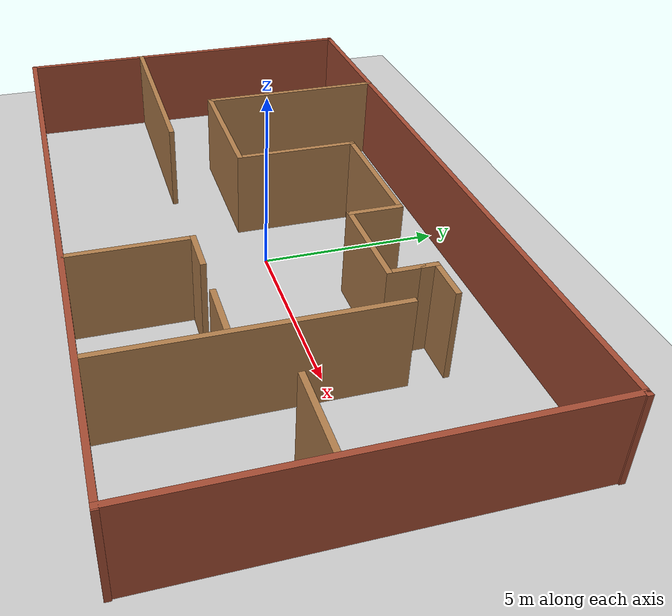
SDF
<sdf version="1.7">
 <world name="default">
  <light name="sun" type="directional">
   <pose>0 0 10 0 -0 0</pose>
   <diffuse>0.8 0.8 0.8 1</diffuse>
   <specular>0.2 0.2 0.2 1</specular>
   <attenuation>
    <range>1000</range>
    <constant>0.9</constant>
    <linear>0.01</linear>
    <quadratic>0.001</quadratic>
   </attenuation>
   <direction>-0.5 0.1 -0.9</direction>
   <spot><inner_angle>0</inner_angle><outer_angle>0</outer_angle><falloff>0</falloff></spot>
  </light>
  <model name="ground_plane">
   <static>1</static>
   <link name="link">
    <collision name="collision">
     <geometry><plane><normal>0 0 1</normal><size>100 100</size></plane></geometry>
     <surface><friction><ode><mu>100</mu><mu2>50</mu2></ode></friction></surface>
    </collision>
    <visual name="visual">
     <cast_shadows>0</cast_shadows>
     <geometry><plane><normal>0 0 1</normal><size>100 100</size></plane></geometry>
     <material>
      <script><uri>file://media/materials/scripts/gazebo.material</uri><name>Gazebo/Grey</name></script>
     </material>
    </visual>
   </link>
  </model>
  <gravity>0 0 -9.8</gravity>
  <magnetic_field>6e-06 2.3e-05 -4.2e-05</magnetic_field>
  <atmosphere type="adiabatic"/>
  <physics type="ode">
   <max_step_size>0.001</max_step_size>
   <real_time_factor>1</real_time_factor>
   <real_time_update_rate>1000</real_time_update_rate>
  </physics>
  <scene><ambient>0.4 0.4 0.4 1</ambient><background>0.7 0.7 0.7 1</background><shadows>1</shadows></scene>
  <spherical_coordinates>
   <surface_model>EARTH_WGS84</surface_model>
   <latitude_deg>0</latitude_deg>
   <longitude_deg>0</longitude_deg>
   <elevation>0</elevation>
   <heading_deg>0</heading_deg>
  </spherical_coordinates>
  <model name="Office">
   <pose>-0.059791 -0.275 0 0 -0 0</pose>
   <link name="Wall_0">
    <collision name="Wall_0_Collision">
     <geometry><box><size>10.75 0.15 2.5</size></box></geometry>
     <pose>0 0 1.25 0 -0 0</pose>
    </collision>
    <visual name="Wall_0_Visual">
     <pose>0 0 1.25 0 -0 0</pose>
     <geometry><box><size>10.75 0.15 2.5</size></box></geometry>
     <material>
      <script><uri>file://media/materials/scripts/gazebo.material</uri><name>Gazebo/Bricks</name></script>
      <ambient>1 1 1 1</ambient>
     </material>
     <meta><layer>0</layer></meta>
    </visual>
    <pose>-9.55634 -0.002137 0 0 -0 -1.5708</pose>
   </link>
   <link name="Wall_1">
    <collision name="Wall_1_Collision">
     <geometry><box><size>19.2275 0.15 2.5</size></box></geometry>
     <pose>0 0 1.25 0 -0 0</pose>
    </collision>
    <visual name="Wall_1_Visual">
     <pose>0 0 1.25 0 -0 0</pose>
     <geometry><box><size>19.2275 0.15 2.5</size></box></geometry>
     <material>
      <script><uri>file://media/materials/scripts/gazebo.material</uri><name>Gazebo/Bricks</name></script>
      <ambient>1 1 1 1</ambient>
     </material>
     <meta><layer>0</layer></meta>
    </visual>
    <pose>0.01759 -5.30214 0 0 -0 0</pose>
   </link>
   <link name="Wall_10">
    <collision name="Wall_10_Collision">
     <geometry><box><size>6 0.15 2.5</size></box></geometry>
     <pose>0 0 1.25 0 -0 0</pose>
    </collision>
    <visual name="Wall_10_Visual">
     <pose>0 0 1.25 0 -0 0</pose>
     <geometry><box><size>6 0.15 2.5</size></box></geometry>
     <material>
      <script><uri>file://media/materials/scripts/gazebo.material</uri><name>Gazebo/Wood</name></script>
      <ambient>1 1 1 1</ambient>
     </material>
     <meta><layer>0</layer></meta>
    </visual>
    <pose>-6.61558 -1.62644 0 0 -0 0</pose>
   </link>
   <link name="Wall_12">
    <collision name="Wall_12_Collision">
     <geometry><box><size>5.5 0.15 2.5</size></box></geometry>
     <pose>0 0 1.25 0 -0 0</pose>
    </collision>
    <visual name="Wall_12_Visual">
     <pose>0 0 1.25 0 -0 0</pose>
     <geometry><box><size>5.5 0.15 2.5</size></box></geometry>
     <material>
      <script><uri>file://media/materials/scripts/gazebo.material</uri><name>Gazebo/Wood</name></script>
      <ambient>1 1 1 1</ambient>
     </material>
     <meta><layer>0</layer></meta>
    </visual>
    <pose>-5.47439 2.62714 0 0 -0 -1.5708</pose>
   </link>
   <link name="Wall_14">
    <collision name="Wall_14_Collision">
     <geometry><box><size>7.5 0.15 2.5</size></box></geometry>
     <pose>0 0 1.25 0 -0 0</pose>
    </collision>
    <visual name="Wall_14_Visual">
     <pose>0 0 1.25 0 -0 0</pose>
     <geometry><box><size>7.5 0.15 2.5</size></box></geometry>
     <material>
      <script><uri>file://media/materials/scripts/gazebo.material</uri><name>Gazebo/Wood</name></script>
      <ambient>1 1 1 1</ambient>
     </material>
     <meta><layer>0</layer></meta>
    </visual>
    <pose>5.70763 -1.58961 0 0 -0 1.5708</pose>
   </link>
   <link name="Wall_16">
    <collision name="Wall_16_Collision">
     <geometry><box><size>2.25 0.15 2.5</size></box></geometry>
     <pose>0 0 1.25 0 -0 0</pose>
    </collision>
    <visual name="Wall_16_Visual">
     <pose>0 0 1.25 0 -0 0</pose>
     <geometry><box><size>2.25 0.15 2.5</size></box></geometry>
     <material>
      <script><uri>file://media/materials/scripts/gazebo.material</uri><name>Gazebo/Wood</name></script>
      <ambient>1 1 1 1</ambient>
     </material>
     <meta><layer>0</layer></meta>
    </visual>
    <pose>8.40281 -0.984407 0 0 -0 3.14159</pose>
   </link>
   <link name="Wall_18">
    <collision name="Wall_18_Collision">
     <geometry><box><size>4 0.15 2.5</size></box></geometry>
     <pose>0 0 1.25 0 -0 0</pose>
    </collision>
    <visual name="Wall_18_Visual">
     <pose>0 0 1.25 0 -0 0</pose>
     <geometry><box><size>4 0.15 2.5</size></box></geometry>
     <material>
      <script><uri>file://media/materials/scripts/gazebo.material</uri><name>Gazebo/Wood</name></script>
      <ambient>1 1 1 1</ambient>
     </material>
     <meta><layer>0</layer></meta>
    </visual>
    <pose>-3.54939 -0.047863 0 0 -0 0</pose>
   </link>
   <link name="Wall_19">
    <collision name="Wall_19_Collision">
     <geometry><box><size>3.5 0.15 2.5</size></box></geometry>
     <pose>0 0 1.25 0 -0 0</pose>
    </collision>
    <visual name="Wall_19_Visual">
     <pose>0 0 1.25 0 -0 0</pose>
     <geometry><box><size>3.5 0.15 2.5</size></box></geometry>
     <material>
      <script><uri>file://media/materials/scripts/gazebo.material</uri><name>Gazebo/Wood</name></script>
      <ambient>1 1 1 1</ambient>
     </material>
     <meta><layer>0</layer></meta>
    </visual>
    <pose>-1.62439 1.62714 0 0 -0 1.5708</pose>
   </link>
   <link name="Wall_2">
    <collision name="Wall_2_Collision">
     <geometry><box><size>10.75 0.15 2.5</size></box></geometry>
     <pose>0 0 1.25 0 -0 0</pose>
    </collision>
    <visual name="Wall_2_Visual">
     <pose>0 0 1.25 0 -0 0</pose>
     <geometry><box><size>10.75 0.15 2.5</size></box></geometry>
     <material>
      <script><uri>file://media/materials/scripts/gazebo.material</uri><name>Gazebo/Bricks</name></script>
      <ambient>1 1 1 1</ambient>
     </material>
     <meta><layer>0</layer></meta>
    </visual>
    <pose>9.52116 -0.002137 0 0 -0 1.5708</pose>
   </link>
   <link name="Wall_20">
    <collision name="Wall_20_Collision">
     <geometry><box><size>3.75 0.15 2.5</size></box></geometry>
     <pose>0 0 1.25 0 -0 0</pose>
    </collision>
    <visual name="Wall_20_Visual">
     <pose>0 0 1.25 0 -0 0</pose>
     <geometry><box><size>3.75 0.15 2.5</size></box></geometry>
     <material>
      <script><uri>file://media/materials/scripts/gazebo.material</uri><name>Gazebo/Wood</name></script>
      <ambient>1 1 1 1</ambient>
     </material>
     <meta><layer>0</layer></meta>
    </visual>
    <pose>0.175609 3.30214 0 0 -0 0</pose>
   </link>
   <link name="Wall_21">
    <collision name="Wall_21_Collision">
     <geometry><box><size>1.5 0.15 2.5</size></box></geometry>
     <pose>0 0 1.25 0 -0 0</pose>
    </collision>
    <visual name="Wall_21_Visual">
     <pose>0 0 1.25 0 -0 0</pose>
     <geometry><box><size>1.5 0.15 2.5</size></box></geometry>
     <material>
      <script><uri>file://media/materials/scripts/gazebo.material</uri><name>Gazebo/Wood</name></script>
      <ambient>1 1 1 1</ambient>
     </material>
     <meta><layer>0</layer></meta>
    </visual>
    <pose>1.97561 2.62714 0 0 -0 -1.5708</pose>
   </link>
   <link name="Wall_22">
    <collision name="Wall_22_Collision">
     <geometry><box><size>2.75 0.15 2.5</size></box></geometry>
     <pose>0 0 1.25 0 -0 0</pose>
    </collision>
    <visual name="Wall_22_Visual">
     <pose>0 0 1.25 0 -0 0</pose>
     <geometry><box><size>2.75 0.15 2.5</size></box></geometry>
     <material>
      <script><uri>file://media/materials/scripts/gazebo.material</uri><name>Gazebo/Wood</name></script>
      <ambient>1 1 1 1</ambient>
     </material>
     <meta><layer>0</layer></meta>
    </visual>
    <pose>3.27561 1.95214 0 0 -0 0</pose>
   </link>
   <link name="Wall_23">
    <collision name="Wall_23_Collision">
     <geometry><box><size>1 0.15 2.5</size></box></geometry>
     <pose>0 0 1.25 0 -0 0</pose>
    </collision>
    <visual name="Wall_23_Visual">
     <pose>0 0 1.25 0 -0 0</pose>
     <geometry><box><size>1 0.15 2.5</size></box></geometry>
     <material>
      <script><uri>file://media/materials/scripts/gazebo.material</uri><name>Gazebo/Wood</name></script>
      <ambient>1 1 1 1</ambient>
     </material>
     <meta><layer>0</layer></meta>
    </visual>
    <pose>4.57561 2.37714 0 0 -0 1.5708</pose>
   </link>
   <link name="Wall_24">
    <collision name="Wall_24_Collision">
     <geometry><box><size>0.5 0.15 2.5</size></box></geometry>
     <pose>0 0 1.25 0 -0 0</pose>
    </collision>
    <visual name="Wall_24_Visual">
     <pose>0 0 1.25 0 -0 0</pose>
     <geometry><box><size>0.5 0.15 2.5</size></box></geometry>
     <material>
      <script><uri>file://media/materials/scripts/gazebo.material</uri><name>Gazebo/Wood</name></script>
      <ambient>1 1 1 1</ambient>
     </material>
     <meta><layer>0</layer></meta>
    </visual>
    <pose>4.57561 2.97714 0 0 -0 1.5708</pose>
   </link>
   <link name="Wall_25">
    <collision name="Wall_25_Collision">
     <geometry><box><size>1.25 0.15 2.5</size></box></geometry>
     <pose>0 0 1.25 0 -0 0</pose>
    </collision>
    <visual name="Wall_25_Visual">
     <pose>0 0 1.25 0 -0 0</pose>
     <geometry><box><size>1.25 0.15 2.5</size></box></geometry>
     <material>
      <script><uri>file://media/materials/scripts/gazebo.material</uri><name>Gazebo/Wood</name></script>
      <ambient>1 1 1 1</ambient>
     </material>
     <meta><layer>0</layer></meta>
    </visual>
    <pose>5.12561 3.15214 0 0 -0 0</pose>
   </link>
   <link name="Wall_27">
    <collision name="Wall_27_Collision">
     <geometry><box><size>3.25 0.15 2.5</size></box></geometry>
     <pose>0 0 1.25 0 -0 0</pose>
    </collision>
    <visual name="Wall_27_Visual">
     <pose>0 0 1.25 0 -0 0</pose>
     <geometry><box><size>3.25 0.15 2.5</size></box></geometry>
     <material>
      <script><uri>file://media/materials/scripts/gazebo.material</uri><name>Gazebo/Wood</name></script>
      <ambient>1 1 1 1</ambient>
     </material>
     <meta><layer>0</layer></meta>
    </visual>
    <pose>2.04271 -3.6611 0 0 -0 1.5708</pose>
   </link>
   <link name="Wall_28">
    <collision name="Wall_28_Collision">
     <geometry><box><size>1.25 0.15 2.5</size></box></geometry>
     <pose>0 0 1.25 0 -0 0</pose>
    </collision>
    <visual name="Wall_28_Visual">
     <pose>0 0 1.25 0 -0 0</pose>
     <geometry><box><size>1.25 0.15 2.5</size></box></geometry>
     <material>
      <script><uri>file://media/materials/scripts/gazebo.material</uri><name>Gazebo/Wood</name></script>
      <ambient>1 1 1 1</ambient>
     </material>
     <meta><layer>0</layer></meta>
    </visual>
    <pose>2.59271 -2.1111 0 0 -0 0</pose>
   </link>
   <link name="Wall_3">
    <collision name="Wall_3_Collision">
     <geometry><box><size>19.2275 0.15 2.5</size></box></geometry>
     <pose>0 0 1.25 0 -0 0</pose>
    </collision>
    <visual name="Wall_3_Visual">
     <pose>0 0 1.25 0 -0 0</pose>
     <geometry><box><size>19.2275 0.15 2.5</size></box></geometry>
     <material>
      <script><uri>file://media/materials/scripts/gazebo.material</uri><name>Gazebo/Bricks</name></script>
      <ambient>1 0.764706 0.305882 1</ambient>
     </material>
     <meta><layer>0</layer></meta>
    </visual>
    <pose>0.01759 5.29786 0 0 -0 3.14159</pose>
   </link>
   <link name="Wall_30">
    <collision name="Wall_30_Collision">
     <geometry><box><size>1.5 0.15 2.5</size></box></geometry>
     <pose>0 0 1.25 0 -0 0</pose>
    </collision>
    <visual name="Wall_30_Visual">
     <pose>0 0 1.25 0 -0 0</pose>
     <geometry><box><size>1.5 0.15 2.5</size></box></geometry>
     <material>
      <script><uri>file://media/materials/scripts/gazebo.material</uri><name>Gazebo/Wood</name></script>
      <ambient>1 1 1 1</ambient>
     </material>
     <meta><layer>0</layer></meta>
    </visual>
    <pose>4.95238 -2.10796 0 0 -0 3.14159</pose>
   </link>
   <static>1</static>
  </model>
 </world>
</sdf>
